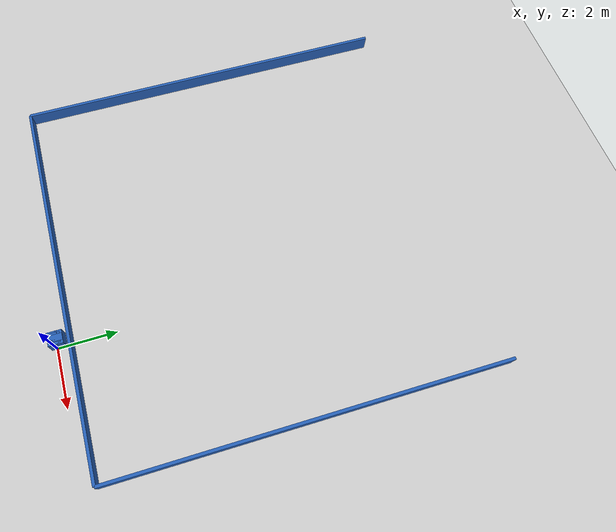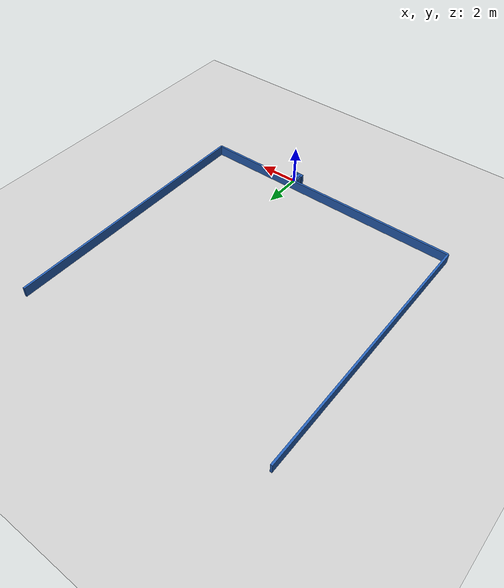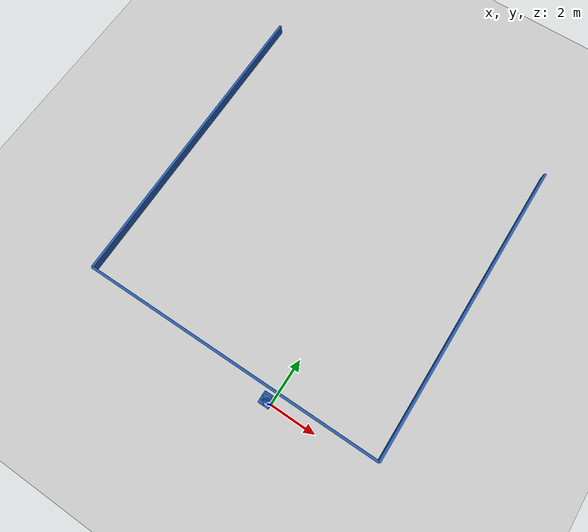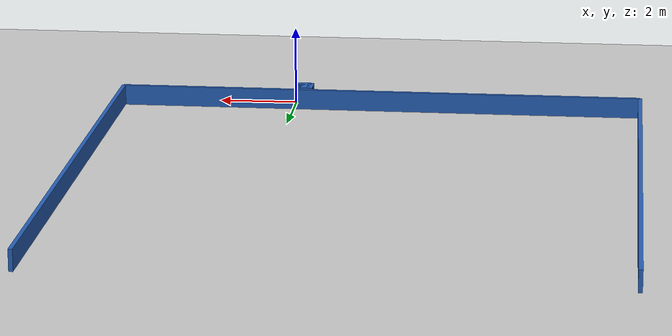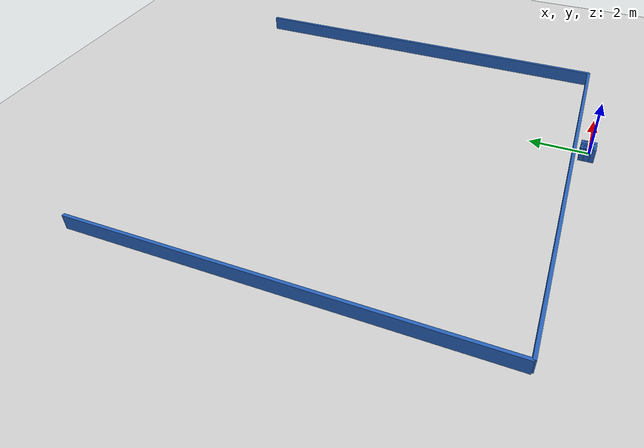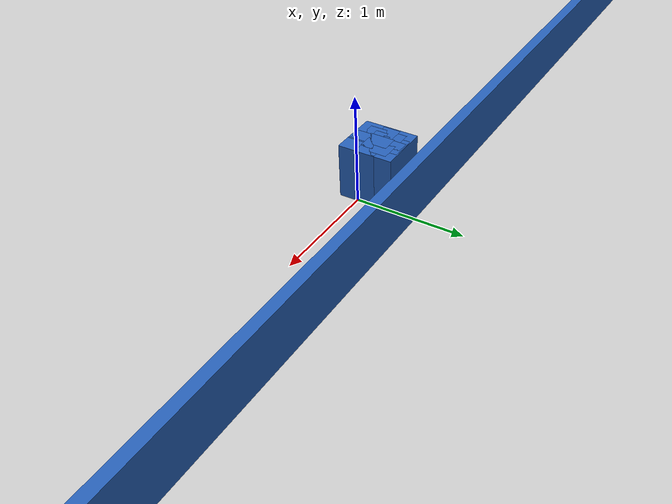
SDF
<?xml version="1.0" ?>
    <sdf version="1.5">
      <world name="default">
        <!-- A global light source -->
        <include>
          <uri>model://sun</uri>
        </include>
        <!-- A ground plane -->
        <include>
          <uri>model://ground_plane</uri>
        </include>

    <model name='libopen_space_final_T2B_80_26'>
      <static>1</static>
      <pose frame=''>-0.225000 0.075000 0.000000 0.000000 0.000000 0.000000</pose>
      <link name='link'>
        <inertial>
          <mass>1</mass>
          <inertia>
            <ixx>0.145833</ixx>
            <ixy>0</ixy>
            <ixz>0</ixz>
            <iyy>0.145833</iyy>
            <iyz>0</iyz>
            <izz>0.125</izz>
          </inertia>
        </inertial>
        <collision name='collision'>
          <geometry>
            <box>
              <size>0.44 0.18 1</size>
            </box>
          </geometry>
          <max_contacts>10</max_contacts>
          <surface>
            <contact>
              <ode/>
            </contact>
            <bounce/>
            <friction>
              <torsional>
                <ode/>
              </torsional>
              <ode/>
            </friction>
          </surface>
        </collision>
        <visual name='visual'>
          <geometry>
            <box>
              <size>0.44 0.18 1</size>
            </box>
          </geometry>
	    <material>
              <ambient>0.152000 0.379000 0.720000 1</ambient>
	      <diffuse>0.152000 0.379000 0.720000 1</diffuse>
          </material>
          <material>
            <script>
              <name>Gazebo/Grey</name>
              <uri>file://media/materials/scripts/gazebo.material</uri>
            </script>
          </material>
        </visual>
        <self_collide>0</self_collide>
        <kinematic>0</kinematic>
        <gravity>1</gravity>
      </link>
      <plugin name='libopen_space_final_T2B_80_26' filename='libopen_space_final_T2B_80_26.so'/>
    </model>

    <model name='libopen_space_final_T2B_122_2'>
      <static>1</static>
      <pose frame=''>-0.225000 0.075000 0.000000 0.000000 0.000000 0.000000</pose>
      <link name='link'>
        <inertial>
          <mass>1</mass>
          <inertia>
            <ixx>0.145833</ixx>
            <ixy>0</ixy>
            <ixz>0</ixz>
            <iyy>0.145833</iyy>
            <iyz>0</iyz>
            <izz>0.125</izz>
          </inertia>
        </inertial>
        <collision name='collision'>
          <geometry>
            <box>
              <size>0.46 0.50 1</size>
            </box>
          </geometry>
          <max_contacts>10</max_contacts>
          <surface>
            <contact>
              <ode/>
            </contact>
            <bounce/>
            <friction>
              <torsional>
                <ode/>
              </torsional>
              <ode/>
            </friction>
          </surface>
        </collision>
        <visual name='visual'>
          <geometry>
            <box>
              <size>0.46 0.50 1</size>
            </box>
          </geometry>
	    <material>
              <ambient>0.152000 0.379000 0.720000 1</ambient>
	      <diffuse>0.152000 0.379000 0.720000 1</diffuse>
          </material>
          <material>
            <script>
              <name>Gazebo/Grey</name>
              <uri>file://media/materials/scripts/gazebo.material</uri>
            </script>
          </material>
        </visual>
        <self_collide>0</self_collide>
        <kinematic>0</kinematic>
        <gravity>1</gravity>
      </link>
      <plugin name='libopen_space_final_T2B_122_2' filename='libopen_space_final_T2B_122_2.so'/>
    </model>

    <model name='libopen_space_final_T2B_105_38'>
      <static>1</static>
      <pose frame=''>-0.225000 0.075000 0.000000 0.000000 0.000000 0.000000</pose>
      <link name='link'>
        <inertial>
          <mass>1</mass>
          <inertia>
            <ixx>0.145833</ixx>
            <ixy>0</ixy>
            <ixz>0</ixz>
            <iyy>0.145833</iyy>
            <iyz>0</iyz>
            <izz>0.125</izz>
          </inertia>
        </inertial>
        <collision name='collision'>
          <geometry>
            <box>
              <size>0.16 0.49 1</size>
            </box>
          </geometry>
          <max_contacts>10</max_contacts>
          <surface>
            <contact>
              <ode/>
            </contact>
            <bounce/>
            <friction>
              <torsional>
                <ode/>
              </torsional>
              <ode/>
            </friction>
          </surface>
        </collision>
        <visual name='visual'>
          <geometry>
            <box>
              <size>0.16 0.49 1</size>
            </box>
          </geometry>
	    <material>
              <ambient>0.152000 0.379000 0.720000 1</ambient>
	      <diffuse>0.152000 0.379000 0.720000 1</diffuse>
          </material>
          <material>
            <script>
              <name>Gazebo/Grey</name>
              <uri>file://media/materials/scripts/gazebo.material</uri>
            </script>
          </material>
        </visual>
        <self_collide>0</self_collide>
        <kinematic>0</kinematic>
        <gravity>1</gravity>
      </link>
      <plugin name='libopen_space_final_T2B_105_38' filename='libopen_space_final_T2B_105_38.so'/>
    </model>

    <model name='libopen_space_final_T2B_125_48'>
      <static>1</static>
      <pose frame=''>-0.225000 0.075000 0.000000 0.000000 0.000000 0.000000</pose>
      <link name='link'>
        <inertial>
          <mass>1</mass>
          <inertia>
            <ixx>0.145833</ixx>
            <ixy>0</ixy>
            <ixz>0</ixz>
            <iyy>0.145833</iyy>
            <iyz>0</iyz>
            <izz>0.125</izz>
          </inertia>
        </inertial>
        <collision name='collision'>
          <geometry>
            <box>
              <size>0.23 0.48 1</size>
            </box>
          </geometry>
          <max_contacts>10</max_contacts>
          <surface>
            <contact>
              <ode/>
            </contact>
            <bounce/>
            <friction>
              <torsional>
                <ode/>
              </torsional>
              <ode/>
            </friction>
          </surface>
        </collision>
        <visual name='visual'>
          <geometry>
            <box>
              <size>0.23 0.48 1</size>
            </box>
          </geometry>
	    <material>
              <ambient>0.152000 0.379000 0.720000 1</ambient>
	      <diffuse>0.152000 0.379000 0.720000 1</diffuse>
          </material>
          <material>
            <script>
              <name>Gazebo/Grey</name>
              <uri>file://media/materials/scripts/gazebo.material</uri>
            </script>
          </material>
        </visual>
        <self_collide>0</self_collide>
        <kinematic>0</kinematic>
        <gravity>1</gravity>
      </link>
      <plugin name='libopen_space_final_T2B_125_48' filename='libopen_space_final_T2B_125_48.so'/>
    </model>

    <model name='libopen_space_final_T2B_134_32'>
      <static>1</static>
      <pose frame=''>-0.225000 0.075000 0.000000 0.000000 0.000000 0.000000</pose>
      <link name='link'>
        <inertial>
          <mass>1</mass>
          <inertia>
            <ixx>0.145833</ixx>
            <ixy>0</ixy>
            <ixz>0</ixz>
            <iyy>0.145833</iyy>
            <iyz>0</iyz>
            <izz>0.125</izz>
          </inertia>
        </inertial>
        <collision name='collision'>
          <geometry>
            <box>
              <size>0.13 0.46 1</size>
            </box>
          </geometry>
          <max_contacts>10</max_contacts>
          <surface>
            <contact>
              <ode/>
            </contact>
            <bounce/>
            <friction>
              <torsional>
                <ode/>
              </torsional>
              <ode/>
            </friction>
          </surface>
        </collision>
        <visual name='visual'>
          <geometry>
            <box>
              <size>0.13 0.46 1</size>
            </box>
          </geometry>
	    <material>
              <ambient>0.152000 0.379000 0.720000 1</ambient>
	      <diffuse>0.152000 0.379000 0.720000 1</diffuse>
          </material>
          <material>
            <script>
              <name>Gazebo/Grey</name>
              <uri>file://media/materials/scripts/gazebo.material</uri>
            </script>
          </material>
        </visual>
        <self_collide>0</self_collide>
        <kinematic>0</kinematic>
        <gravity>1</gravity>
      </link>
      <plugin name='libopen_space_final_T2B_134_32' filename='libopen_space_final_T2B_134_32.so'/>
    </model>

    <model name='libopen_space_final_T2B_77_65'>
      <static>1</static>
      <pose frame=''>-0.225000 0.075000 0.000000 0.000000 0.000000 0.000000</pose>
      <link name='link'>
        <inertial>
          <mass>1</mass>
          <inertia>
            <ixx>0.145833</ixx>
            <ixy>0</ixy>
            <ixz>0</ixz>
            <iyy>0.145833</iyy>
            <iyz>0</iyz>
            <izz>0.125</izz>
          </inertia>
        </inertial>
        <collision name='collision'>
          <geometry>
            <box>
              <size>0.15 0.23 1</size>
            </box>
          </geometry>
          <max_contacts>10</max_contacts>
          <surface>
            <contact>
              <ode/>
            </contact>
            <bounce/>
            <friction>
              <torsional>
                <ode/>
              </torsional>
              <ode/>
            </friction>
          </surface>
        </collision>
        <visual name='visual'>
          <geometry>
            <box>
              <size>0.15 0.23 1</size>
            </box>
          </geometry>
	    <material>
              <ambient>0.152000 0.379000 0.720000 1</ambient>
	      <diffuse>0.152000 0.379000 0.720000 1</diffuse>
          </material>
          <material>
            <script>
              <name>Gazebo/Grey</name>
              <uri>file://media/materials/scripts/gazebo.material</uri>
            </script>
          </material>
        </visual>
        <self_collide>0</self_collide>
        <kinematic>0</kinematic>
        <gravity>1</gravity>
      </link>
      <plugin name='libopen_space_final_T2B_77_65' filename='libopen_space_final_T2B_77_65.so'/>
    </model>

    <model name='libopen_space_final_T2B_105_94'>
      <static>1</static>
      <pose frame=''>-0.225000 0.075000 0.000000 0.000000 0.000000 0.000000</pose>
      <link name='link'>
        <inertial>
          <mass>1</mass>
          <inertia>
            <ixx>0.145833</ixx>
            <ixy>0</ixy>
            <ixz>0</ixz>
            <iyy>0.145833</iyy>
            <iyz>0</iyz>
            <izz>0.125</izz>
          </inertia>
        </inertial>
        <collision name='collision'>
          <geometry>
            <box>
              <size>0.27 0.19 1</size>
            </box>
          </geometry>
          <max_contacts>10</max_contacts>
          <surface>
            <contact>
              <ode/>
            </contact>
            <bounce/>
            <friction>
              <torsional>
                <ode/>
              </torsional>
              <ode/>
            </friction>
          </surface>
        </collision>
        <visual name='visual'>
          <geometry>
            <box>
              <size>0.27 0.19 1</size>
            </box>
          </geometry>
	    <material>
              <ambient>0.152000 0.379000 0.720000 1</ambient>
	      <diffuse>0.152000 0.379000 0.720000 1</diffuse>
          </material>
          <material>
            <script>
              <name>Gazebo/Grey</name>
              <uri>file://media/materials/scripts/gazebo.material</uri>
            </script>
          </material>
        </visual>
        <self_collide>0</self_collide>
        <kinematic>0</kinematic>
        <gravity>1</gravity>
      </link>
      <plugin name='libopen_space_final_T2B_105_94' filename='libopen_space_final_T2B_105_94.so'/>
    </model>

    <model name='libopen_space_final_T2B_123_13'>
      <static>1</static>
      <pose frame=''>-0.225000 0.075000 0.000000 0.000000 0.000000 0.000000</pose>
      <link name='link'>
        <inertial>
          <mass>1</mass>
          <inertia>
            <ixx>0.145833</ixx>
            <ixy>0</ixy>
            <ixz>0</ixz>
            <iyy>0.145833</iyy>
            <iyz>0</iyz>
            <izz>0.125</izz>
          </inertia>
        </inertial>
        <collision name='collision'>
          <geometry>
            <box>
              <size>0.19 0.16 1</size>
            </box>
          </geometry>
          <max_contacts>10</max_contacts>
          <surface>
            <contact>
              <ode/>
            </contact>
            <bounce/>
            <friction>
              <torsional>
                <ode/>
              </torsional>
              <ode/>
            </friction>
          </surface>
        </collision>
        <visual name='visual'>
          <geometry>
            <box>
              <size>0.19 0.16 1</size>
            </box>
          </geometry>
	    <material>
              <ambient>0.152000 0.379000 0.720000 1</ambient>
	      <diffuse>0.152000 0.379000 0.720000 1</diffuse>
          </material>
          <material>
            <script>
              <name>Gazebo/Grey</name>
              <uri>file://media/materials/scripts/gazebo.material</uri>
            </script>
          </material>
        </visual>
        <self_collide>0</self_collide>
        <kinematic>0</kinematic>
        <gravity>1</gravity>
      </link>
      <plugin name='libopen_space_final_T2B_123_13' filename='libopen_space_final_T2B_123_13.so'/>
    </model>

    <model name='libopen_space_final_T2B_103_85'>
      <static>1</static>
      <pose frame=''>-0.225000 0.075000 0.000000 0.000000 0.000000 0.000000</pose>
      <link name='link'>
        <inertial>
          <mass>1</mass>
          <inertia>
            <ixx>0.145833</ixx>
            <ixy>0</ixy>
            <ixz>0</ixz>
            <iyy>0.145833</iyy>
            <iyz>0</iyz>
            <izz>0.125</izz>
          </inertia>
        </inertial>
        <collision name='collision'>
          <geometry>
            <box>
              <size>0.46 0.18 1</size>
            </box>
          </geometry>
          <max_contacts>10</max_contacts>
          <surface>
            <contact>
              <ode/>
            </contact>
            <bounce/>
            <friction>
              <torsional>
                <ode/>
              </torsional>
              <ode/>
            </friction>
          </surface>
        </collision>
        <visual name='visual'>
          <geometry>
            <box>
              <size>0.46 0.18 1</size>
            </box>
          </geometry>
	    <material>
              <ambient>0.152000 0.379000 0.720000 1</ambient>
	      <diffuse>0.152000 0.379000 0.720000 1</diffuse>
          </material>
          <material>
            <script>
              <name>Gazebo/Grey</name>
              <uri>file://media/materials/scripts/gazebo.material</uri>
            </script>
          </material>
        </visual>
        <self_collide>0</self_collide>
        <kinematic>0</kinematic>
        <gravity>1</gravity>
      </link>
      <plugin name='libopen_space_final_T2B_103_85' filename='libopen_space_final_T2B_103_85.so'/>
    </model>

    <model name='libopen_space_final_T2B_79_93'>
      <static>1</static>
      <pose frame=''>-0.225000 0.075000 0.000000 0.000000 0.000000 0.000000</pose>
      <link name='link'>
        <inertial>
          <mass>1</mass>
          <inertia>
            <ixx>0.145833</ixx>
            <ixy>0</ixy>
            <ixz>0</ixz>
            <iyy>0.145833</iyy>
            <iyz>0</iyz>
            <izz>0.125</izz>
          </inertia>
        </inertial>
        <collision name='collision'>
          <geometry>
            <box>
              <size>0.10 0.27 1</size>
            </box>
          </geometry>
          <max_contacts>10</max_contacts>
          <surface>
            <contact>
              <ode/>
            </contact>
            <bounce/>
            <friction>
              <torsional>
                <ode/>
              </torsional>
              <ode/>
            </friction>
          </surface>
        </collision>
        <visual name='visual'>
          <geometry>
            <box>
              <size>0.10 0.27 1</size>
            </box>
          </geometry>
	    <material>
              <ambient>0.152000 0.379000 0.720000 1</ambient>
	      <diffuse>0.152000 0.379000 0.720000 1</diffuse>
          </material>
          <material>
            <script>
              <name>Gazebo/Grey</name>
              <uri>file://media/materials/scripts/gazebo.material</uri>
            </script>
          </material>
        </visual>
        <self_collide>0</self_collide>
        <kinematic>0</kinematic>
        <gravity>1</gravity>
      </link>
      <plugin name='libopen_space_final_T2B_79_93' filename='libopen_space_final_T2B_79_93.so'/>
    </model>

    <model name='libopen_space_final_T2B_100_36'>
      <static>1</static>
      <pose frame=''>-0.225000 0.075000 0.000000 0.000000 0.000000 0.000000</pose>
      <link name='link'>
        <inertial>
          <mass>1</mass>
          <inertia>
            <ixx>0.145833</ixx>
            <ixy>0</ixy>
            <ixz>0</ixz>
            <iyy>0.145833</iyy>
            <iyz>0</iyz>
            <izz>0.125</izz>
          </inertia>
        </inertial>
        <collision name='collision'>
          <geometry>
            <box>
              <size>0.10 0.26 1</size>
            </box>
          </geometry>
          <max_contacts>10</max_contacts>
          <surface>
            <contact>
              <ode/>
            </contact>
            <bounce/>
            <friction>
              <torsional>
                <ode/>
              </torsional>
              <ode/>
            </friction>
          </surface>
        </collision>
        <visual name='visual'>
          <geometry>
            <box>
              <size>0.10 0.26 1</size>
            </box>
          </geometry>
	    <material>
              <ambient>0.152000 0.379000 0.720000 1</ambient>
	      <diffuse>0.152000 0.379000 0.720000 1</diffuse>
          </material>
          <material>
            <script>
              <name>Gazebo/Grey</name>
              <uri>file://media/materials/scripts/gazebo.material</uri>
            </script>
          </material>
        </visual>
        <self_collide>0</self_collide>
        <kinematic>0</kinematic>
        <gravity>1</gravity>
      </link>
      <plugin name='libopen_space_final_T2B_100_36' filename='libopen_space_final_T2B_100_36.so'/>
    </model>

    <model name='libopen_space_final_T2B_81_68'>
      <static>1</static>
      <pose frame=''>-0.225000 0.075000 0.000000 0.000000 0.000000 0.000000</pose>
      <link name='link'>
        <inertial>
          <mass>1</mass>
          <inertia>
            <ixx>0.145833</ixx>
            <ixy>0</ixy>
            <ixz>0</ixz>
            <iyy>0.145833</iyy>
            <iyz>0</iyz>
            <izz>0.125</izz>
          </inertia>
        </inertial>
        <collision name='collision'>
          <geometry>
            <box>
              <size>0.36 0.35 1</size>
            </box>
          </geometry>
          <max_contacts>10</max_contacts>
          <surface>
            <contact>
              <ode/>
            </contact>
            <bounce/>
            <friction>
              <torsional>
                <ode/>
              </torsional>
              <ode/>
            </friction>
          </surface>
        </collision>
        <visual name='visual'>
          <geometry>
            <box>
              <size>0.36 0.35 1</size>
            </box>
          </geometry>
	    <material>
              <ambient>0.152000 0.379000 0.720000 1</ambient>
	      <diffuse>0.152000 0.379000 0.720000 1</diffuse>
          </material>
          <material>
            <script>
              <name>Gazebo/Grey</name>
              <uri>file://media/materials/scripts/gazebo.material</uri>
            </script>
          </material>
        </visual>
        <self_collide>0</self_collide>
        <kinematic>0</kinematic>
        <gravity>1</gravity>
      </link>
      <plugin name='libopen_space_final_T2B_81_68' filename='libopen_space_final_T2B_81_68.so'/>
    </model>

        <model name='bottom_wall'>
          <static>1</static>
          <pose frame=''>-2.25 0.5 0.000000 0.000000 0.000000 1.57079632</pose>
          <link name='link'>
            <inertial>
            <mass>1</mass>
            <inertia>
              <ixx>0.145833</ixx>
              <ixy>0</ixy>
              <ixz>0</ixz>
              <iyy>0.145833</iyy>
              <iyz>0</iyz>
              <izz>0.125</izz>
            </inertia>
            </inertial>
            <collision name='collision'>
            <geometry>
              <box>
              <size>0.1 13.5 1</size>
              </box>
            </geometry>
            <max_contacts>10</max_contacts>
            <surface>
              <contact>
              <ode/>
              </contact>
              <bounce/>
              <friction>
              <torsional>
                <ode/>
              </torsional>
              <ode/>
              </friction>
            </surface>
            </collision>
            <visual name='visual'>
            <geometry>
              <box>
              <size>0.1 13.5 1</size>
              </box>
            </geometry>
            <material>
              <ambient>0.152000 0.379000 0.720000 1</ambient>
            <diffuse>0.152000 0.379000 0.720000 1</diffuse>
            </material>
            <material>
              <script>
              <name>Gazebo/Grey</name>
              <uri>file://media/materials/scripts/gazebo.material</uri>
              </script>
            </material>
            </visual>
            <self_collide>0</self_collide>
            <kinematic>0</kinematic>
            <gravity>1</gravity>
          </link>
        </model>

        <model name='left_wall'>
          <static>1</static>
          <pose frame=''>-9 7.25 0.000000 0.000000 0.000000 0.000000</pose>
          <link name='link'>
            <inertial>
            <mass>1</mass>
            <inertia>
              <ixx>0.145833</ixx>
              <ixy>0</ixy>
              <ixz>0</ixz>
              <iyy>0.145833</iyy>
              <iyz>0</iyz>
              <izz>0.125</izz>
            </inertia>
            </inertial>
            <collision name='collision'>
            <geometry>
              <box>
              <size>0.1 13.5 1</size>
              </box>
            </geometry>
            <max_contacts>10</max_contacts>
            <surface>
              <contact>
              <ode/>
              </contact>
              <bounce/>
              <friction>
              <torsional>
                <ode/>
              </torsional>
              <ode/>
              </friction>
            </surface>
            </collision>
            <visual name='visual'>
            <geometry>
              <box>
              <size>0.1 13.5 1</size>
              </box>
            </geometry>
            <material>
              <ambient>0.152000 0.379000 0.720000 1</ambient>
            <diffuse>0.152000 0.379000 0.720000 1</diffuse>
            </material>
            <material>
              <script>
              <name>Gazebo/Grey</name>
              <uri>file://media/materials/scripts/gazebo.material</uri>
              </script>
            </material>
            </visual>
            <self_collide>0</self_collide>
            <kinematic>0</kinematic>
            <gravity>1</gravity>
          </link>
        </model>

        <model name='right_wall'>
          <static>1</static>
          <pose frame=''>4.5 7.25 0.000000 0.000000 0.000000 0.000000</pose>
          <link name='link'>
            <inertial>
            <mass>1</mass>
            <inertia>
              <ixx>0.145833</ixx>
              <ixy>0</ixy>
              <ixz>0</ixz>
              <iyy>0.145833</iyy>
              <iyz>0</iyz>
              <izz>0.125</izz>
            </inertia>
            </inertial>
            <collision name='collision'>
            <geometry>
              <box>
              <size>0.1 13.5 1</size>
              </box>
            </geometry>
            <max_contacts>10</max_contacts>
            <surface>
              <contact>
              <ode/>
              </contact>
              <bounce/>
              <friction>
              <torsional>
                <ode/>
              </torsional>
              <ode/>
              </friction>
            </surface>
            </collision>
            <visual name='visual'>
            <geometry>
              <box>
              <size>0.1 13.5 1</size>
              </box>
            </geometry>
            <material>
              <ambient>0.152000 0.379000 0.720000 1</ambient>
            <diffuse>0.152000 0.379000 0.720000 1</diffuse>
            </material>
            <material>
              <script>
              <name>Gazebo/Grey</name>
              <uri>file://media/materials/scripts/gazebo.material</uri>
              </script>
            </material>
            </visual>
            <self_collide>0</self_collide>
            <kinematic>0</kinematic>
            <gravity>1</gravity>
          </link>
        </model>

      </world>
    </sdf>"
